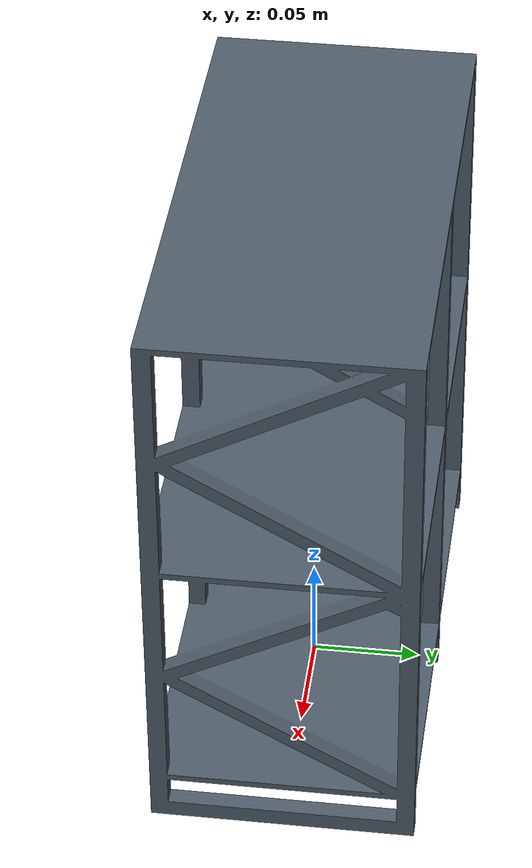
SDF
<?xml version="1.0" ?>
<sdf version="1.8">
  <model name="storage_rack">
    <static>true</static>
    <link name="link">
      <!-- Visual Mesh -->
      <visual name="visual">
        <geometry>
          <mesh>
            <uri>model://storage_rack/meshes/rack.stl</uri>
          </mesh>
        </geometry>
        <material>
          <ambient>0.25 0.3 0.35 1.0</ambient>
          <diffuse>0.3 0.35 0.4 1.0</diffuse>
          <specular>0.4 0.4 0.4 1.0</specular>
        </material>
      </visual>

      <!-- Collision for Bottom Shelf (Z=0.025m) -->
      <collision name="collision_shelf_bottom">
        <pose>0 0 0.0235 0 0 0</pose>
        <geometry>
          <box>
            <size>0.24 0.12 0.003</size>
          </box>
        </geometry>
        <surface>
          <friction>
            <ode>
              <mu>1.0</mu>
              <mu2>1.0</mu2>
            </ode>
          </friction>
        </surface>
      </collision>

      <!-- Collision for Middle Shelf (Z=0.145m) -->
      <collision name="collision_shelf_middle">
        <pose>0 0 0.1435 0 0 0</pose>
        <geometry>
          <box>
            <size>0.24 0.12 0.003</size>
          </box>
        </geometry>
        <surface>
          <friction>
            <ode>
              <mu>1.0</mu>
              <mu2>1.0</mu2>
            </ode>
          </friction>
        </surface>
      </collision>

      <!-- Collision for Top Shelf (Z=0.265m) -->
      <collision name="collision_shelf_top">
        <pose>0 0 0.2635 0 0 0</pose>
        <geometry>
          <box>
            <size>0.24 0.12 0.003</size>
          </box>
        </geometry>
      </collision>

      <!-- Left Post Collision -->
      <collision name="collision_post_left">
        <pose>-0.116 0 0.1325 0 0 0</pose>
        <geometry>
          <box>
            <size>0.008 0.12 0.265</size>
          </box>
        </geometry>
      </collision>

      <!-- Right Post Collision -->
      <collision name="collision_post_right">
        <pose>0.116 0 0.1325 0 0 0</pose>
        <geometry>
          <box>
            <size>0.008 0.12 0.265</size>
          </box>
        </geometry>
      </collision>

      <!-- Middle Divider Collision -->
      <collision name="collision_post_mid">
        <pose>0 0 0.1325 0 0 0</pose>
        <geometry>
          <box>
            <size>0.008 0.12 0.265</size>
          </box>
        </geometry>
      </collision>
    </link>
  </model>
</sdf>
